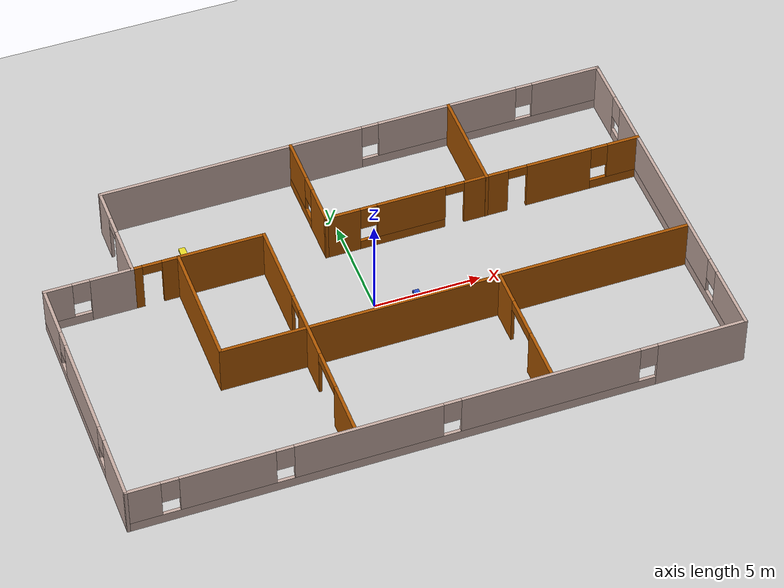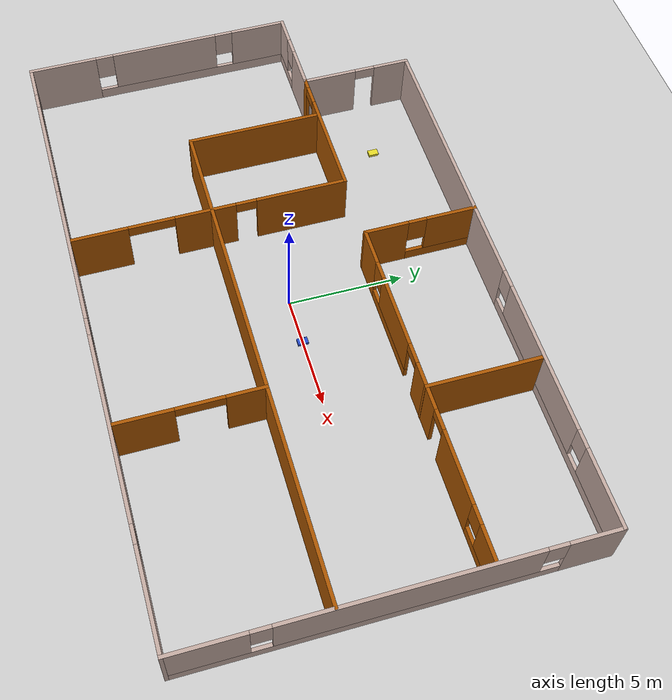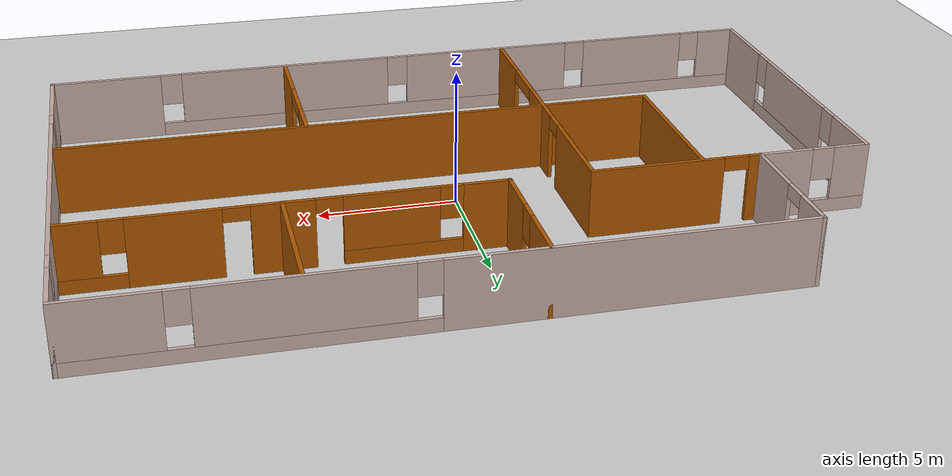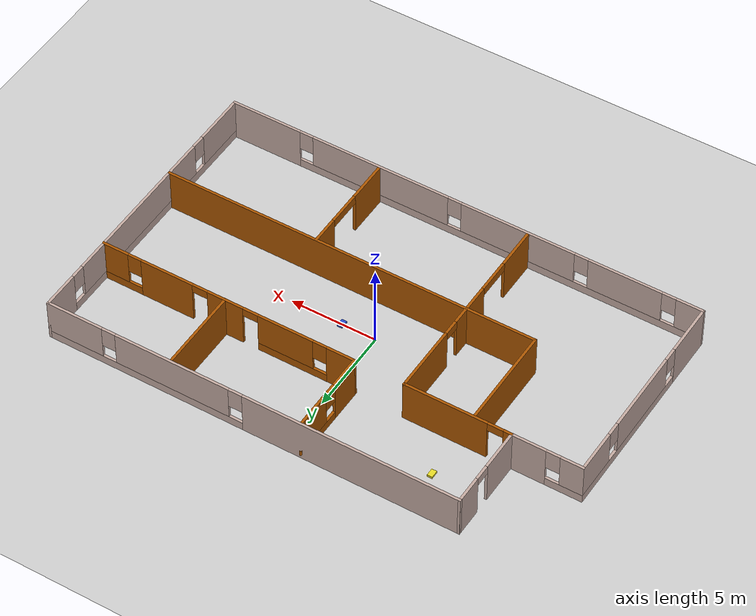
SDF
<sdf version="1.6">
 <world name="default">
  <model name="ground_plane">
   <static>1</static>
   <link name="link">
    <collision name="collision">
     <geometry><plane><normal>0 0 1</normal><size>100 100</size></plane></geometry>
     <surface>
      <contact><collide_bitmask>65535</collide_bitmask></contact>
      <friction><ode><mu>100</mu><mu2>50</mu2></ode></friction>
     </surface>
    </collision>
    <visual name="visual">
     <cast_shadows>0</cast_shadows>
     <geometry><plane><normal>0 0 1</normal><size>100 100</size></plane></geometry>
     <material>
      <script><uri>file://media/materials/scripts/gazebo.material</uri><name>Gazebo/Grey</name></script>
     </material>
    </visual>
   </link>
  </model>
  <model name="Building">
   <link name="Wall_11">
    <pose>-1 6 0 0 -0 1.5708</pose>
    <visual name="Wall_11_Visual_0">
     <pose>-1.51661 0 1.25 0 -0 0</pose>
     <geometry><box><size>1.96679 0.15 2.5</size></box></geometry>
     <material>
      <script><uri>file://media/materials/scripts/gazebo.material</uri><name>Gazebo/Grey</name></script>
      <ambient>0.666667 0.333333 0 1</ambient>
     </material>
     <meta><layer>0</layer></meta>
    </visual>
    <collision name="Wall_11_Collision_0">
     <geometry><box><size>1.96679 0.15 2.5</size></box></geometry>
     <pose>-1.51661 0 1.25 0 -0 0</pose>
    </collision>
    <visual name="Wall_11_Visual_1">
     <pose>0.983394 0 0.25 0 -0 0</pose>
     <geometry><box><size>3.03321 0.15 0.5</size></box></geometry>
     <material>
      <script><uri>file://media/materials/scripts/gazebo.material</uri><name>Gazebo/Grey</name></script>
      <ambient>0.666667 0.333333 0 1</ambient>
     </material>
     <meta><layer>0</layer></meta>
    </visual>
    <collision name="Wall_11_Collision_1">
     <geometry><box><size>3.03321 0.15 0.5</size></box></geometry>
     <pose>0.983394 0 0.25 0 -0 0</pose>
    </collision>
    <visual name="Wall_11_Visual_2">
     <pose>1.38339 0 1.5 0 -0 0</pose>
     <geometry><box><size>2.23321 0.15 2</size></box></geometry>
     <material>
      <script><uri>file://media/materials/scripts/gazebo.material</uri><name>Gazebo/Grey</name></script>
      <ambient>0.666667 0.333333 0 1</ambient>
     </material>
     <meta><layer>0</layer></meta>
    </visual>
    <collision name="Wall_11_Collision_2">
     <geometry><box><size>2.23321 0.15 2</size></box></geometry>
     <pose>1.38339 0 1.5 0 -0 0</pose>
    </collision>
    <visual name="Wall_11_Visual_3">
     <pose>-0.133212 0 1.9 0 -0 0</pose>
     <geometry><box><size>0.8 0.15 1.2</size></box></geometry>
     <material>
      <script><uri>file://media/materials/scripts/gazebo.material</uri><name>Gazebo/Grey</name></script>
      <ambient>0.666667 0.333333 0 1</ambient>
     </material>
     <meta><layer>0</layer></meta>
    </visual>
    <collision name="Wall_11_Collision_3">
     <geometry><box><size>0.8 0.15 1.2</size></box></geometry>
     <pose>-0.133212 0 1.9 0 -0 0</pose>
    </collision>
   </link>
   <link name="Wall_13">
    <pose>-12 3.575 0 0 -0 3.14159</pose>
    <visual name="Wall_13_Visual_0">
     <pose>-1.0623 0 1.25 0 -0 0</pose>
     <geometry><box><size>2.02541 0.15 2.5</size></box></geometry>
     <material>
      <script><uri>file://media/materials/scripts/gazebo.material</uri><name>Gazebo/Grey</name></script>
      <ambient>0.760784 0.662745 0.627451 1</ambient>
     </material>
     <meta><layer>0</layer></meta>
    </visual>
    <collision name="Wall_13_Collision_0">
     <geometry><box><size>2.02541 0.15 2.5</size></box></geometry>
     <pose>-1.0623 0 1.25 0 -0 0</pose>
    </collision>
    <visual name="Wall_13_Visual_1">
     <pose>1.0127 0 0.25 0 -0 0</pose>
     <geometry><box><size>2.12459 0.15 0.5</size></box></geometry>
     <material>
      <script><uri>file://media/materials/scripts/gazebo.material</uri><name>Gazebo/Grey</name></script>
      <ambient>0.760784 0.662745 0.627451 1</ambient>
     </material>
     <meta><layer>0</layer></meta>
    </visual>
    <collision name="Wall_13_Collision_1">
     <geometry><box><size>2.12459 0.15 0.5</size></box></geometry>
     <pose>1.0127 0 0.25 0 -0 0</pose>
    </collision>
    <visual name="Wall_13_Visual_2">
     <pose>1.4127 0 1.5 0 -0 0</pose>
     <geometry><box><size>1.32459 0.15 2</size></box></geometry>
     <material>
      <script><uri>file://media/materials/scripts/gazebo.material</uri><name>Gazebo/Grey</name></script>
      <ambient>0.760784 0.662745 0.627451 1</ambient>
     </material>
     <meta><layer>0</layer></meta>
    </visual>
    <collision name="Wall_13_Collision_2">
     <geometry><box><size>1.32459 0.15 2</size></box></geometry>
     <pose>1.4127 0 1.5 0 -0 0</pose>
    </collision>
    <visual name="Wall_13_Visual_3">
     <pose>0.350407 0 1.9 0 -0 0</pose>
     <geometry><box><size>0.8 0.15 1.2</size></box></geometry>
     <material>
      <script><uri>file://media/materials/scripts/gazebo.material</uri><name>Gazebo/Grey</name></script>
      <ambient>0.760784 0.662745 0.627451 1</ambient>
     </material>
     <meta><layer>0</layer></meta>
    </visual>
    <collision name="Wall_13_Collision_3">
     <geometry><box><size>0.8 0.15 1.2</size></box></geometry>
     <pose>0.350407 0 1.9 0 -0 0</pose>
    </collision>
   </link>
   <link name="Wall_15">
    <pose>-10 6 0 0 -0 1.5708</pose>
    <visual name="Wall_15_Visual_0">
     <pose>-1.27093 0 1.25 0 -0 0</pose>
     <geometry><box><size>2.45814 0.15 2.5</size></box></geometry>
     <material>
      <script><uri>file://media/materials/scripts/gazebo.material</uri><name>Gazebo/Grey</name></script>
      <ambient>0.760784 0.662745 0.627451 1</ambient>
     </material>
     <meta><layer>0</layer></meta>
    </visual>
    <collision name="Wall_15_Collision_0">
     <geometry><box><size>2.45814 0.15 2.5</size></box></geometry>
     <pose>-1.27093 0 1.25 0 -0 0</pose>
    </collision>
    <visual name="Wall_15_Visual_1">
     <pose>1.67907 0 1.25 0 -0 0</pose>
     <geometry><box><size>1.64186 0.15 2.5</size></box></geometry>
     <material>
      <script><uri>file://media/materials/scripts/gazebo.material</uri><name>Gazebo/Grey</name></script>
      <ambient>0.760784 0.662745 0.627451 1</ambient>
     </material>
     <meta><layer>0</layer></meta>
    </visual>
    <collision name="Wall_15_Collision_1">
     <geometry><box><size>1.64186 0.15 2.5</size></box></geometry>
     <pose>1.67907 0 1.25 0 -0 0</pose>
    </collision>
    <visual name="Wall_15_Visual_2">
     <pose>0.408138 0 2.25 0 -0 0</pose>
     <geometry><box><size>0.9 0.15 0.5</size></box></geometry>
     <material>
      <script><uri>file://media/materials/scripts/gazebo.material</uri><name>Gazebo/Grey</name></script>
      <ambient>0.760784 0.662745 0.627451 1</ambient>
     </material>
     <meta><layer>0</layer></meta>
    </visual>
    <collision name="Wall_15_Collision_2">
     <geometry><box><size>0.9 0.15 0.5</size></box></geometry>
     <pose>0.408138 0 2.25 0 -0 0</pose>
    </collision>
   </link>
   <link name="Wall_16">
    <pose>2 8.425 0 0 -0 0</pose>
    <visual name="Wall_16_Visual_0">
     <pose>-5.83381 0 1.25 0 -0 0</pose>
     <geometry><box><size>12.4824 0.15 2.5</size></box></geometry>
     <material>
      <script><uri>file://media/materials/scripts/gazebo.material</uri><name>Gazebo/Grey</name></script>
      <ambient>0.760784 0.662745 0.627451 1</ambient>
     </material>
     <meta><layer>0</layer></meta>
    </visual>
    <collision name="Wall_16_Collision_0">
     <geometry><box><size>12.4824 0.15 2.5</size></box></geometry>
     <pose>-5.83381 0 1.25 0 -0 0</pose>
    </collision>
    <visual name="Wall_16_Visual_1">
     <pose>6.24119 0 0.25 0 -0 0</pose>
     <geometry><box><size>11.6676 0.15 0.5</size></box></geometry>
     <material>
      <script><uri>file://media/materials/scripts/gazebo.material</uri><name>Gazebo/Grey</name></script>
      <ambient>0.760784 0.662745 0.627451 1</ambient>
     </material>
     <meta><layer>0</layer></meta>
    </visual>
    <collision name="Wall_16_Collision_1">
     <geometry><box><size>11.6676 0.15 0.5</size></box></geometry>
     <pose>6.24119 0 0.25 0 -0 0</pose>
    </collision>
    <visual name="Wall_16_Visual_2">
     <pose>4.57426 0 1.5 0 -0 0</pose>
     <geometry><box><size>6.73378 0.15 2</size></box></geometry>
     <material>
      <script><uri>file://media/materials/scripts/gazebo.material</uri><name>Gazebo/Grey</name></script>
      <ambient>0.760784 0.662745 0.627451 1</ambient>
     </material>
     <meta><layer>0</layer></meta>
    </visual>
    <collision name="Wall_16_Collision_2">
     <geometry><box><size>6.73378 0.15 2</size></box></geometry>
     <pose>4.57426 0 1.5 0 -0 0</pose>
    </collision>
    <visual name="Wall_16_Visual_3">
     <pose>10.4081 0 1.5 0 -0 0</pose>
     <geometry><box><size>3.33385 0.15 2</size></box></geometry>
     <material>
      <script><uri>file://media/materials/scripts/gazebo.material</uri><name>Gazebo/Grey</name></script>
      <ambient>0.760784 0.662745 0.627451 1</ambient>
     </material>
     <meta><layer>0</layer></meta>
    </visual>
    <collision name="Wall_16_Collision_3">
     <geometry><box><size>3.33385 0.15 2</size></box></geometry>
     <pose>10.4081 0 1.5 0 -0 0</pose>
    </collision>
    <visual name="Wall_16_Visual_4">
     <pose>0.807374 0 1.9 0 -0 0</pose>
     <geometry><box><size>0.8 0.15 1.2</size></box></geometry>
     <material>
      <script><uri>file://media/materials/scripts/gazebo.material</uri><name>Gazebo/Grey</name></script>
      <ambient>0.760784 0.662745 0.627451 1</ambient>
     </material>
     <meta><layer>0</layer></meta>
    </visual>
    <collision name="Wall_16_Collision_4">
     <geometry><box><size>0.8 0.15 1.2</size></box></geometry>
     <pose>0.807374 0 1.9 0 -0 0</pose>
    </collision>
    <visual name="Wall_16_Visual_5">
     <pose>8.34115 0 1.9 0 -0 0</pose>
     <geometry><box><size>0.8 0.15 1.2</size></box></geometry>
     <material>
      <script><uri>file://media/materials/scripts/gazebo.material</uri><name>Gazebo/Grey</name></script>
      <ambient>0.760784 0.662745 0.627451 1</ambient>
     </material>
     <meta><layer>0</layer></meta>
    </visual>
    <collision name="Wall_16_Collision_5">
     <geometry><box><size>0.8 0.15 1.2</size></box></geometry>
     <pose>8.34115 0 1.9 0 -0 0</pose>
    </collision>
   </link>
   <link name="Wall_17">
    <pose>14 0 0 0 0 -1.5708</pose>
    <visual name="Wall_17_Visual_0">
     <pose>-7.40595 0 1.25 0 -0 0</pose>
     <geometry><box><size>2.1881 0.15 2.5</size></box></geometry>
     <material>
      <script><uri>file://media/materials/scripts/gazebo.material</uri><name>Gazebo/Grey</name></script>
      <ambient>0.760784 0.662745 0.627451 1</ambient>
     </material>
     <meta><layer>0</layer></meta>
    </visual>
    <collision name="Wall_17_Collision_0">
     <geometry><box><size>2.1881 0.15 2.5</size></box></geometry>
     <pose>-7.40595 0 1.25 0 -0 0</pose>
    </collision>
    <visual name="Wall_17_Visual_1">
     <pose>1.09405 0 0.25 0 -0 0</pose>
     <geometry><box><size>14.8119 0.15 0.5</size></box></geometry>
     <material>
      <script><uri>file://media/materials/scripts/gazebo.material</uri><name>Gazebo/Grey</name></script>
      <ambient>0.760784 0.662745 0.627451 1</ambient>
     </material>
     <meta><layer>0</layer></meta>
    </visual>
    <collision name="Wall_17_Collision_1">
     <geometry><box><size>14.8119 0.15 0.5</size></box></geometry>
     <pose>1.09405 0 0.25 0 -0 0</pose>
    </collision>
    <visual name="Wall_17_Visual_2">
     <pose>-0.475851 0 1.5 0 -0 0</pose>
     <geometry><box><size>10.0721 0.15 2</size></box></geometry>
     <material>
      <script><uri>file://media/materials/scripts/gazebo.material</uri><name>Gazebo/Grey</name></script>
      <ambient>0.760784 0.662745 0.627451 1</ambient>
     </material>
     <meta><layer>0</layer></meta>
    </visual>
    <collision name="Wall_17_Collision_2">
     <geometry><box><size>10.0721 0.15 2</size></box></geometry>
     <pose>-0.475851 0 1.5 0 -0 0</pose>
    </collision>
    <visual name="Wall_17_Visual_3">
     <pose>6.9301 0 1.5 0 -0 0</pose>
     <geometry><box><size>3.1398 0.15 2</size></box></geometry>
     <material>
      <script><uri>file://media/materials/scripts/gazebo.material</uri><name>Gazebo/Grey</name></script>
      <ambient>0.760784 0.662745 0.627451 1</ambient>
     </material>
     <meta><layer>0</layer></meta>
    </visual>
    <collision name="Wall_17_Collision_3">
     <geometry><box><size>3.1398 0.15 2</size></box></geometry>
     <pose>6.9301 0 1.5 0 -0 0</pose>
    </collision>
    <visual name="Wall_17_Visual_4">
     <pose>-5.9119 0 1.9 0 -0 0</pose>
     <geometry><box><size>0.8 0.15 1.2</size></box></geometry>
     <material>
      <script><uri>file://media/materials/scripts/gazebo.material</uri><name>Gazebo/Grey</name></script>
      <ambient>0.760784 0.662745 0.627451 1</ambient>
     </material>
     <meta><layer>0</layer></meta>
    </visual>
    <collision name="Wall_17_Collision_4">
     <geometry><box><size>0.8 0.15 1.2</size></box></geometry>
     <pose>-5.9119 0 1.9 0 -0 0</pose>
    </collision>
    <visual name="Wall_17_Visual_5">
     <pose>4.9602 0 1.9 0 -0 0</pose>
     <geometry><box><size>0.8 0.15 1.2</size></box></geometry>
     <material>
      <script><uri>file://media/materials/scripts/gazebo.material</uri><name>Gazebo/Grey</name></script>
      <ambient>0.760784 0.662745 0.627451 1</ambient>
     </material>
     <meta><layer>0</layer></meta>
    </visual>
    <collision name="Wall_17_Collision_5">
     <geometry><box><size>0.8 0.15 1.2</size></box></geometry>
     <pose>4.9602 0 1.9 0 -0 0</pose>
    </collision>
   </link>
   <link name="Wall_18">
    <pose>0 -8.425 0 0 -0 3.14159</pose>
    <visual name="Wall_18_Visual_0">
     <pose>-11.979 0 1.25 0 -0 0</pose>
     <geometry><box><size>4.19207 0.15 2.5</size></box></geometry>
     <material>
      <script><uri>file://media/materials/scripts/gazebo.material</uri><name>Gazebo/Grey</name></script>
      <ambient>0.760784 0.662745 0.627451 1</ambient>
     </material>
     <meta><layer>0</layer></meta>
    </visual>
    <collision name="Wall_18_Collision_0">
     <geometry><box><size>4.19207 0.15 2.5</size></box></geometry>
     <pose>-11.979 0 1.25 0 -0 0</pose>
    </collision>
    <visual name="Wall_18_Visual_1">
     <pose>2.09604 0 0.25 0 -0 0</pose>
     <geometry><box><size>23.9579 0.15 0.5</size></box></geometry>
     <material>
      <script><uri>file://media/materials/scripts/gazebo.material</uri><name>Gazebo/Grey</name></script>
      <ambient>0.760784 0.662745 0.627451 1</ambient>
     </material>
     <meta><layer>0</layer></meta>
    </visual>
    <collision name="Wall_18_Collision_1">
     <geometry><box><size>23.9579 0.15 0.5</size></box></geometry>
     <pose>2.09604 0 0.25 0 -0 0</pose>
    </collision>
    <visual name="Wall_18_Visual_2">
     <pose>-4.97168 0 1.5 0 -0 0</pose>
     <geometry><box><size>8.22249 0.15 2</size></box></geometry>
     <material>
      <script><uri>file://media/materials/scripts/gazebo.material</uri><name>Gazebo/Grey</name></script>
      <ambient>0.760784 0.662745 0.627451 1</ambient>
     </material>
     <meta><layer>0</layer></meta>
    </visual>
    <collision name="Wall_18_Collision_2">
     <geometry><box><size>8.22249 0.15 2</size></box></geometry>
     <pose>-4.97168 0 1.5 0 -0 0</pose>
    </collision>
    <visual name="Wall_18_Visual_3">
     <pose>3.2839 0 1.5 0 -0 0</pose>
     <geometry><box><size>6.68867 0.15 2</size></box></geometry>
     <material>
      <script><uri>file://media/materials/scripts/gazebo.material</uri><name>Gazebo/Grey</name></script>
      <ambient>0.760784 0.662745 0.627451 1</ambient>
     </material>
     <meta><layer>0</layer></meta>
    </visual>
    <collision name="Wall_18_Collision_3">
     <geometry><box><size>6.68867 0.15 2</size></box></geometry>
     <pose>3.2839 0 1.5 0 -0 0</pose>
    </collision>
    <visual name="Wall_18_Visual_4">
     <pose>9.55452 0 1.5 0 -0 0</pose>
     <geometry><box><size>4.25259 0.15 2</size></box></geometry>
     <material>
      <script><uri>file://media/materials/scripts/gazebo.material</uri><name>Gazebo/Grey</name></script>
      <ambient>0.760784 0.662745 0.627451 1</ambient>
     </material>
     <meta><layer>0</layer></meta>
    </visual>
    <collision name="Wall_18_Collision_4">
     <geometry><box><size>4.25259 0.15 2</size></box></geometry>
     <pose>9.55452 0 1.5 0 -0 0</pose>
    </collision>
    <visual name="Wall_18_Visual_5">
     <pose>13.2779 0 1.5 0 -0 0</pose>
     <geometry><box><size>1.59418 0.15 2</size></box></geometry>
     <material>
      <script><uri>file://media/materials/scripts/gazebo.material</uri><name>Gazebo/Grey</name></script>
      <ambient>0.760784 0.662745 0.627451 1</ambient>
     </material>
     <meta><layer>0</layer></meta>
    </visual>
    <collision name="Wall_18_Collision_5">
     <geometry><box><size>1.59418 0.15 2</size></box></geometry>
     <pose>13.2779 0 1.5 0 -0 0</pose>
    </collision>
    <visual name="Wall_18_Visual_6">
     <pose>-9.48293 0 1.9 0 -0 0</pose>
     <geometry><box><size>0.8 0.15 1.2</size></box></geometry>
     <material>
      <script><uri>file://media/materials/scripts/gazebo.material</uri><name>Gazebo/Grey</name></script>
      <ambient>0.760784 0.662745 0.627451 1</ambient>
     </material>
     <meta><layer>0</layer></meta>
    </visual>
    <collision name="Wall_18_Collision_6">
     <geometry><box><size>0.8 0.15 1.2</size></box></geometry>
     <pose>-9.48293 0 1.9 0 -0 0</pose>
    </collision>
    <visual name="Wall_18_Visual_7">
     <pose>-0.460437 0 1.9 0 -0 0</pose>
     <geometry><box><size>0.8 0.15 1.2</size></box></geometry>
     <material>
      <script><uri>file://media/materials/scripts/gazebo.material</uri><name>Gazebo/Grey</name></script>
      <ambient>0.760784 0.662745 0.627451 1</ambient>
     </material>
     <meta><layer>0</layer></meta>
    </visual>
    <collision name="Wall_18_Collision_7">
     <geometry><box><size>0.8 0.15 1.2</size></box></geometry>
     <pose>-0.460437 0 1.9 0 -0 0</pose>
    </collision>
    <visual name="Wall_18_Visual_8">
     <pose>7.02823 0 1.9 0 -0 0</pose>
     <geometry><box><size>0.8 0.15 1.2</size></box></geometry>
     <material>
      <script><uri>file://media/materials/scripts/gazebo.material</uri><name>Gazebo/Grey</name></script>
      <ambient>0.760784 0.662745 0.627451 1</ambient>
     </material>
     <meta><layer>0</layer></meta>
    </visual>
    <collision name="Wall_18_Collision_8">
     <geometry><box><size>0.8 0.15 1.2</size></box></geometry>
     <pose>7.02823 0 1.9 0 -0 0</pose>
    </collision>
    <visual name="Wall_18_Visual_9">
     <pose>12.0808 0 1.9 0 -0 0</pose>
     <geometry><box><size>0.8 0.15 1.2</size></box></geometry>
     <material>
      <script><uri>file://media/materials/scripts/gazebo.material</uri><name>Gazebo/Grey</name></script>
      <ambient>0.760784 0.662745 0.627451 1</ambient>
     </material>
     <meta><layer>0</layer></meta>
    </visual>
    <collision name="Wall_18_Collision_9">
     <geometry><box><size>0.8 0.15 1.2</size></box></geometry>
     <pose>12.0808 0 1.9 0 -0 0</pose>
    </collision>
   </link>
   <link name="Wall_19">
    <pose>-14 -2.425 0 0 -0 1.5708</pose>
    <visual name="Wall_19_Visual_0">
     <pose>-4.52766 0 1.25 0 -0 0</pose>
     <geometry><box><size>3.09469 0.15 2.5</size></box></geometry>
     <material>
      <script><uri>file://media/materials/scripts/gazebo.material</uri><name>Gazebo/Grey</name></script>
      <ambient>0.760784 0.662745 0.627451 1</ambient>
     </material>
     <meta><layer>0</layer></meta>
    </visual>
    <collision name="Wall_19_Collision_0">
     <geometry><box><size>3.09469 0.15 2.5</size></box></geometry>
     <pose>-4.52766 0 1.25 0 -0 0</pose>
    </collision>
    <visual name="Wall_19_Visual_1">
     <pose>1.54734 0 0.25 0 -0 0</pose>
     <geometry><box><size>9.05531 0.15 0.5</size></box></geometry>
     <material>
      <script><uri>file://media/materials/scripts/gazebo.material</uri><name>Gazebo/Grey</name></script>
      <ambient>0.760784 0.662745 0.627451 1</ambient>
     </material>
     <meta><layer>0</layer></meta>
    </visual>
    <collision name="Wall_19_Collision_1">
     <geometry><box><size>9.05531 0.15 0.5</size></box></geometry>
     <pose>1.54734 0 0.25 0 -0 0</pose>
    </collision>
    <visual name="Wall_19_Visual_2">
     <pose>0.261773 0 1.5 0 -0 0</pose>
     <geometry><box><size>4.88417 0.15 2</size></box></geometry>
     <material>
      <script><uri>file://media/materials/scripts/gazebo.material</uri><name>Gazebo/Grey</name></script>
      <ambient>0.760784 0.662745 0.627451 1</ambient>
     </material>
     <meta><layer>0</layer></meta>
    </visual>
    <collision name="Wall_19_Collision_2">
     <geometry><box><size>4.88417 0.15 2</size></box></geometry>
     <pose>0.261773 0 1.5 0 -0 0</pose>
    </collision>
    <visual name="Wall_19_Visual_3">
     <pose>4.78943 0 1.5 0 -0 0</pose>
     <geometry><box><size>2.57114 0.15 2</size></box></geometry>
     <material>
      <script><uri>file://media/materials/scripts/gazebo.material</uri><name>Gazebo/Grey</name></script>
      <ambient>0.760784 0.662745 0.627451 1</ambient>
     </material>
     <meta><layer>0</layer></meta>
    </visual>
    <collision name="Wall_19_Collision_3">
     <geometry><box><size>2.57114 0.15 2</size></box></geometry>
     <pose>4.78943 0 1.5 0 -0 0</pose>
    </collision>
    <visual name="Wall_19_Visual_4">
     <pose>-2.58031 0 1.9 0 -0 0</pose>
     <geometry><box><size>0.8 0.15 1.2</size></box></geometry>
     <material>
      <script><uri>file://media/materials/scripts/gazebo.material</uri><name>Gazebo/Grey</name></script>
      <ambient>0.760784 0.662745 0.627451 1</ambient>
     </material>
     <meta><layer>0</layer></meta>
    </visual>
    <collision name="Wall_19_Collision_4">
     <geometry><box><size>0.8 0.15 1.2</size></box></geometry>
     <pose>-2.58031 0 1.9 0 -0 0</pose>
    </collision>
    <visual name="Wall_19_Visual_5">
     <pose>3.10386 0 1.9 0 -0 0</pose>
     <geometry><box><size>0.8 0.15 1.2</size></box></geometry>
     <material>
      <script><uri>file://media/materials/scripts/gazebo.material</uri><name>Gazebo/Grey</name></script>
      <ambient>0.760784 0.662745 0.627451 1</ambient>
     </material>
     <meta><layer>0</layer></meta>
    </visual>
    <collision name="Wall_19_Collision_5">
     <geometry><box><size>0.8 0.15 1.2</size></box></geometry>
     <pose>3.10386 0 1.9 0 -0 0</pose>
    </collision>
   </link>
   <link name="Wall_23">
    <pose>-6.95 3.575 0 0 -0 0</pose>
    <visual name="Wall_23_Visual_0">
     <pose>-2.86366 0 1.25 0 -0 0</pose>
     <geometry><box><size>0.522689 0.15 2.5</size></box></geometry>
     <material>
      <script><uri>file://media/materials/scripts/gazebo.material</uri><name>Gazebo/Grey</name></script>
      <ambient>0.666667 0.333333 0 1</ambient>
     </material>
     <meta><layer>0</layer></meta>
    </visual>
    <collision name="Wall_23_Collision_0">
     <geometry><box><size>0.522689 0.15 2.5</size></box></geometry>
     <pose>-2.86366 0 1.25 0 -0 0</pose>
    </collision>
    <visual name="Wall_23_Visual_1">
     <pose>0.711344 0 1.25 0 -0 0</pose>
     <geometry><box><size>4.82731 0.15 2.5</size></box></geometry>
     <material>
      <script><uri>file://media/materials/scripts/gazebo.material</uri><name>Gazebo/Grey</name></script>
      <ambient>0.666667 0.333333 0 1</ambient>
     </material>
     <meta><layer>0</layer></meta>
    </visual>
    <collision name="Wall_23_Collision_1">
     <geometry><box><size>4.82731 0.15 2.5</size></box></geometry>
     <pose>0.711344 0 1.25 0 -0 0</pose>
    </collision>
    <visual name="Wall_23_Visual_2">
     <pose>-2.15231 0 2.25 0 -0 0</pose>
     <geometry><box><size>0.9 0.15 0.5</size></box></geometry>
     <material>
      <script><uri>file://media/materials/scripts/gazebo.material</uri><name>Gazebo/Grey</name></script>
      <ambient>0.666667 0.333333 0 1</ambient>
     </material>
     <meta><layer>0</layer></meta>
    </visual>
    <collision name="Wall_23_Collision_2">
     <geometry><box><size>0.9 0.15 0.5</size></box></geometry>
     <pose>-2.15231 0 2.25 0 -0 0</pose>
    </collision>
   </link>
   <link name="Wall_24">
    <pose>-3.9 -2.35 0 0 0 -1.5708</pose>
    <visual name="Wall_24_Visual_0">
     <pose>-3.99507 0 1.25 0 -0 0</pose>
     <geometry><box><size>4.00985 0.15 2.5</size></box></geometry>
     <material>
      <script><uri>file://media/materials/scripts/gazebo.material</uri><name>Gazebo/Grey</name></script>
      <ambient>0.666667 0.333333 0 1</ambient>
     </material>
     <meta><layer>0</layer></meta>
    </visual>
    <collision name="Wall_24_Collision_0">
     <geometry><box><size>4.00985 0.15 2.5</size></box></geometry>
     <pose>-3.99507 0 1.25 0 -0 0</pose>
    </collision>
    <visual name="Wall_24_Visual_1">
     <pose>0.23747 0 1.25 0 -0 0</pose>
     <geometry><box><size>2.65523 0.15 2.5</size></box></geometry>
     <material>
      <script><uri>file://media/materials/scripts/gazebo.material</uri><name>Gazebo/Grey</name></script>
      <ambient>0.666667 0.333333 0 1</ambient>
     </material>
     <meta><layer>0</layer></meta>
    </visual>
    <collision name="Wall_24_Collision_1">
     <geometry><box><size>2.65523 0.15 2.5</size></box></geometry>
     <pose>0.23747 0 1.25 0 -0 0</pose>
    </collision>
    <visual name="Wall_24_Visual_2">
     <pose>4.78254 0 1.25 0 -0 0</pose>
     <geometry><box><size>2.43491 0.15 2.5</size></box></geometry>
     <material>
      <script><uri>file://media/materials/scripts/gazebo.material</uri><name>Gazebo/Grey</name></script>
      <ambient>0.666667 0.333333 0 1</ambient>
     </material>
     <meta><layer>0</layer></meta>
    </visual>
    <collision name="Wall_24_Collision_2">
     <geometry><box><size>2.43491 0.15 2.5</size></box></geometry>
     <pose>4.78254 0 1.25 0 -0 0</pose>
    </collision>
    <visual name="Wall_24_Visual_3">
     <pose>-1.54015 0 2.25 0 -0 0</pose>
     <geometry><box><size>0.9 0.15 0.5</size></box></geometry>
     <material>
      <script><uri>file://media/materials/scripts/gazebo.material</uri><name>Gazebo/Grey</name></script>
      <ambient>0.666667 0.333333 0 1</ambient>
     </material>
     <meta><layer>0</layer></meta>
    </visual>
    <collision name="Wall_24_Collision_3">
     <geometry><box><size>0.9 0.15 0.5</size></box></geometry>
     <pose>-1.54015 0 2.25 0 -0 0</pose>
    </collision>
    <visual name="Wall_24_Visual_4">
     <pose>2.56509 0 2.25 0 -0 0</pose>
     <geometry><box><size>2 0.15 0.5</size></box></geometry>
     <material>
      <script><uri>file://media/materials/scripts/gazebo.material</uri><name>Gazebo/Grey</name></script>
      <ambient>0.666667 0.333333 0 1</ambient>
     </material>
     <meta><layer>0</layer></meta>
    </visual>
    <collision name="Wall_24_Collision_4">
     <geometry><box><size>2 0.15 0.5</size></box></geometry>
     <pose>2.56509 0 2.25 0 -0 0</pose>
    </collision>
   </link>
   <link name="Wall_26">
    <collision name="Wall_26_Collision">
     <geometry><box><size>6 0.15 2.5</size></box></geometry>
     <pose>0 0 1.25 0 -0 0</pose>
    </collision>
    <visual name="Wall_26_Visual">
     <pose>0 0 1.25 0 -0 0</pose>
     <geometry><box><size>6 0.15 2.5</size></box></geometry>
     <material>
      <script><uri>file://media/materials/scripts/gazebo.material</uri><name>Gazebo/Grey</name></script>
      <ambient>0.666667 0.333333 0 1</ambient>
     </material>
     <meta><layer>0</layer></meta>
    </visual>
    <pose>-7.87279 0.619488 0 0 0 -1.5708</pose>
   </link>
   <link name="Wall_27">
    <collision name="Wall_27_Collision">
     <geometry><box><size>22 0.15 2.5</size></box></geometry>
     <pose>0 0 1.25 0 -0 0</pose>
    </collision>
    <visual name="Wall_27_Visual">
     <pose>0 0 1.25 0 -0 0</pose>
     <geometry><box><size>22 0.15 2.5</size></box></geometry>
     <material>
      <script><uri>file://media/materials/scripts/gazebo.material</uri><name>Gazebo/Grey</name></script>
      <ambient>0.666667 0.333333 0 1</ambient>
     </material>
     <meta><layer>0</layer></meta>
    </visual>
    <pose>3.05221 -2.30551 0 0 -0 0</pose>
   </link>
   <link name="Wall_29">
    <pose>5 -5.2905 0 0 0 -1.5708</pose>
    <visual name="Wall_29_Visual_0">
     <pose>-2.2125 0 1.25 0 -0 0</pose>
     <geometry><box><size>1.694 0.15 2.5</size></box></geometry>
     <material>
      <script><uri>file://media/materials/scripts/gazebo.material</uri><name>Gazebo/Grey</name></script>
      <ambient>0.666667 0.333333 0 1</ambient>
     </material>
     <meta><layer>0</layer></meta>
    </visual>
    <collision name="Wall_29_Collision_0">
     <geometry><box><size>1.694 0.15 2.5</size></box></geometry>
     <pose>-2.2125 0 1.25 0 -0 0</pose>
    </collision>
    <visual name="Wall_29_Visual_1">
     <pose>1.847 0 1.25 0 -0 0</pose>
     <geometry><box><size>2.425 0.15 2.5</size></box></geometry>
     <material>
      <script><uri>file://media/materials/scripts/gazebo.material</uri><name>Gazebo/Grey</name></script>
      <ambient>0.666667 0.333333 0 1</ambient>
     </material>
     <meta><layer>0</layer></meta>
    </visual>
    <collision name="Wall_29_Collision_1">
     <geometry><box><size>2.425 0.15 2.5</size></box></geometry>
     <pose>1.847 0 1.25 0 -0 0</pose>
    </collision>
    <visual name="Wall_29_Visual_2">
     <pose>-0.3655 0 2.25 0 -0 0</pose>
     <geometry><box><size>2 0.15 0.5</size></box></geometry>
     <material>
      <script><uri>file://media/materials/scripts/gazebo.material</uri><name>Gazebo/Grey</name></script>
      <ambient>0.666667 0.333333 0 1</ambient>
     </material>
     <meta><layer>0</layer></meta>
    </visual>
    <collision name="Wall_29_Collision_2">
     <geometry><box><size>2 0.15 0.5</size></box></geometry>
     <pose>-0.3655 0 2.25 0 -0 0</pose>
    </collision>
   </link>
   <link name="Wall_32">
    <collision name="Wall_32_Collision">
     <geometry><box><size>5 0.15 2.5</size></box></geometry>
     <pose>0 0 1.25 0 -0 0</pose>
    </collision>
    <visual name="Wall_32_Visual">
     <pose>0 0 1.25 0 -0 0</pose>
     <geometry><box><size>5 0.15 2.5</size></box></geometry>
     <material>
      <script><uri>file://media/materials/scripts/gazebo.material</uri><name>Gazebo/Grey</name></script>
      <ambient>0.666667 0.333333 0 1</ambient>
     </material>
     <meta><layer>0</layer></meta>
    </visual>
    <pose>6.64193 5.99105 0 0 -0 1.5708</pose>
   </link>
   <link name="Wall_5">
    <pose>6.5 3.575 0 0 -0 0</pose>
    <visual name="Wall_5_Visual_0">
     <pose>-6.73606 0 1.25 0 -0 0</pose>
     <geometry><box><size>1.67788 0.15 2.5</size></box></geometry>
     <material>
      <script><uri>file://media/materials/scripts/gazebo.material</uri><name>Gazebo/Grey</name></script>
      <ambient>0.666667 0.333333 0 1</ambient>
     </material>
     <meta><layer>0</layer></meta>
    </visual>
    <collision name="Wall_5_Collision_0">
     <geometry><box><size>1.67788 0.15 2.5</size></box></geometry>
     <pose>-6.73606 0 1.25 0 -0 0</pose>
    </collision>
    <visual name="Wall_5_Visual_1">
     <pose>0.119376 0 1.25 0 -0 0</pose>
     <geometry><box><size>2.12253 0.15 2.5</size></box></geometry>
     <material>
      <script><uri>file://media/materials/scripts/gazebo.material</uri><name>Gazebo/Grey</name></script>
      <ambient>0.666667 0.333333 0 1</ambient>
     </material>
     <meta><layer>0</layer></meta>
    </visual>
    <collision name="Wall_5_Collision_1">
     <geometry><box><size>2.12253 0.15 2.5</size></box></geometry>
     <pose>0.119376 0 1.25 0 -0 0</pose>
    </collision>
    <visual name="Wall_5_Visual_2">
     <pose>3.64059 0 1.25 0 -0 0</pose>
     <geometry><box><size>3.1199 0.15 2.5</size></box></geometry>
     <material>
      <script><uri>file://media/materials/scripts/gazebo.material</uri><name>Gazebo/Grey</name></script>
      <ambient>0.666667 0.333333 0 1</ambient>
     </material>
     <meta><layer>0</layer></meta>
    </visual>
    <collision name="Wall_5_Collision_2">
     <geometry><box><size>3.1199 0.15 2.5</size></box></geometry>
     <pose>3.64059 0 1.25 0 -0 0</pose>
    </collision>
    <visual name="Wall_5_Visual_3">
     <pose>-3.86951 0 0.25 0 -0 0</pose>
     <geometry><box><size>4.05523 0.15 0.5</size></box></geometry>
     <material>
      <script><uri>file://media/materials/scripts/gazebo.material</uri><name>Gazebo/Grey</name></script>
      <ambient>0.666667 0.333333 0 1</ambient>
     </material>
     <meta><layer>0</layer></meta>
    </visual>
    <collision name="Wall_5_Collision_3">
     <geometry><box><size>4.05523 0.15 0.5</size></box></geometry>
     <pose>-3.86951 0 0.25 0 -0 0</pose>
    </collision>
    <visual name="Wall_5_Visual_4">
     <pose>6.38777 0 0.25 0 -0 0</pose>
     <geometry><box><size>2.37446 0.15 0.5</size></box></geometry>
     <material>
      <script><uri>file://media/materials/scripts/gazebo.material</uri><name>Gazebo/Grey</name></script>
      <ambient>0.666667 0.333333 0 1</ambient>
     </material>
     <meta><layer>0</layer></meta>
    </visual>
    <collision name="Wall_5_Collision_4">
     <geometry><box><size>2.37446 0.15 0.5</size></box></geometry>
     <pose>6.38777 0 0.25 0 -0 0</pose>
    </collision>
    <visual name="Wall_5_Visual_5">
     <pose>-3.46951 0 1.5 0 -0 0</pose>
     <geometry><box><size>3.25523 0.15 2</size></box></geometry>
     <material>
      <script><uri>file://media/materials/scripts/gazebo.material</uri><name>Gazebo/Grey</name></script>
      <ambient>0.666667 0.333333 0 1</ambient>
     </material>
     <meta><layer>0</layer></meta>
    </visual>
    <collision name="Wall_5_Collision_5">
     <geometry><box><size>3.25523 0.15 2</size></box></geometry>
     <pose>-3.46951 0 1.5 0 -0 0</pose>
    </collision>
    <visual name="Wall_5_Visual_6">
     <pose>-3.46951 0 1.5 0 -0 0</pose>
     <geometry><box><size>3.25523 0.15 2</size></box></geometry>
     <material>
      <script><uri>file://media/materials/scripts/gazebo.material</uri><name>Gazebo/Grey</name></script>
      <ambient>0.666667 0.333333 0 1</ambient>
     </material>
     <meta><layer>0</layer></meta>
    </visual>
    <collision name="Wall_5_Collision_6">
     <geometry><box><size>3.25523 0.15 2</size></box></geometry>
     <pose>-3.46951 0 1.5 0 -0 0</pose>
    </collision>
    <visual name="Wall_5_Visual_7">
     <pose>6.78777 0 1.5 0 -0 0</pose>
     <geometry><box><size>1.57446 0.15 2</size></box></geometry>
     <material>
      <script><uri>file://media/materials/scripts/gazebo.material</uri><name>Gazebo/Grey</name></script>
      <ambient>0.666667 0.333333 0 1</ambient>
     </material>
     <meta><layer>0</layer></meta>
    </visual>
    <collision name="Wall_5_Collision_7">
     <geometry><box><size>1.57446 0.15 2</size></box></geometry>
     <pose>6.78777 0 1.5 0 -0 0</pose>
    </collision>
    <visual name="Wall_5_Visual_8">
     <pose>-5.49712 0 1.9 0 -0 0</pose>
     <geometry><box><size>0.8 0.15 1.2</size></box></geometry>
     <material>
      <script><uri>file://media/materials/scripts/gazebo.material</uri><name>Gazebo/Grey</name></script>
      <ambient>0.666667 0.333333 0 1</ambient>
     </material>
     <meta><layer>0</layer></meta>
    </visual>
    <collision name="Wall_5_Collision_8">
     <geometry><box><size>0.8 0.15 1.2</size></box></geometry>
     <pose>-5.49712 0 1.9 0 -0 0</pose>
    </collision>
    <visual name="Wall_5_Visual_9">
     <pose>5.60054 0 1.9 0 -0 0</pose>
     <geometry><box><size>0.8 0.15 1.2</size></box></geometry>
     <material>
      <script><uri>file://media/materials/scripts/gazebo.material</uri><name>Gazebo/Grey</name></script>
      <ambient>0.666667 0.333333 0 1</ambient>
     </material>
     <meta><layer>0</layer></meta>
    </visual>
    <collision name="Wall_5_Collision_9">
     <geometry><box><size>0.8 0.15 1.2</size></box></geometry>
     <pose>5.60054 0 1.9 0 -0 0</pose>
    </collision>
    <visual name="Wall_5_Visual_10">
     <pose>1.63064 0 2.25 0 -0 0</pose>
     <geometry><box><size>0.9 0.15 0.5</size></box></geometry>
     <material>
      <script><uri>file://media/materials/scripts/gazebo.material</uri><name>Gazebo/Grey</name></script>
      <ambient>0.666667 0.333333 0 1</ambient>
     </material>
     <meta><layer>0</layer></meta>
    </visual>
    <collision name="Wall_5_Collision_10">
     <geometry><box><size>0.9 0.15 0.5</size></box></geometry>
     <pose>1.63064 0 2.25 0 -0 0</pose>
    </collision>
    <visual name="Wall_5_Visual_11">
     <pose>-1.39189 0 2.25 0 -0 0</pose>
     <geometry><box><size>0.9 0.15 0.5</size></box></geometry>
     <material>
      <script><uri>file://media/materials/scripts/gazebo.material</uri><name>Gazebo/Grey</name></script>
      <ambient>0.666667 0.333333 0 1</ambient>
     </material>
     <meta><layer>0</layer></meta>
    </visual>
    <collision name="Wall_5_Collision_11">
     <geometry><box><size>0.9 0.15 0.5</size></box></geometry>
     <pose>-1.39189 0 2.25 0 -0 0</pose>
    </collision>
    <visual name="Wall_5_Visual_12">
     <pose>-1.39189 0 2.25 0 -0 0</pose>
     <geometry><box><size>0.9 0.15 0.5</size></box></geometry>
     <material>
      <script><uri>file://media/materials/scripts/gazebo.material</uri><name>Gazebo/Grey</name></script>
      <ambient>0.666667 0.333333 0 1</ambient>
     </material>
     <meta><layer>0</layer></meta>
    </visual>
    <collision name="Wall_5_Collision_12">
     <geometry><box><size>0.9 0.15 0.5</size></box></geometry>
     <pose>-1.39189 0 2.25 0 -0 0</pose>
    </collision>
   </link>
   <static>1</static>
  </model>
  <model name="unit_box_2">
   <pose>1.885 0.12 0.1325 0 0 0</pose>
   <link name="link">
    <inertial>
     <mass>0.05</mass>
     <inertia>
      <ixx>0.016667</ixx>
      <ixy>0</ixy>
      <ixz>0</ixz>
      <iyy>0.016667</iyy>
      <iyz>0</iyz>
      <izz>0.016667</izz>
     </inertia>
    </inertial>
    <collision name="collision">
     <geometry><box><size>0.015 0.025 0.025</size></box></geometry>
     <surface>
      <friction>
       <ode><mu>50</mu><mu2>50</mu2></ode>
       <torsional><ode><coefficient>10</coefficient><use_patch_radius>true</use_patch_radius></ode></torsional>
      </friction>
      <contact><ode><kp>1e+06</kp><kd>150</kd><min_depth>0.001</min_depth><max_vel>0.1</max_vel></ode></contact>
     </surface>
    </collision>
    <visual name="visual">
     <geometry><box><size>0.015 0.025 0.025</size></box></geometry>
     <material>
      <lighting>1</lighting>
      <script><uri>file://media/materials/scripts/gazebo.material</uri><name>Gazebo/Red</name></script>
      <shader type="pixel"><normal_map>__default__</normal_map></shader>
      <ambient>0.9 0.1 0.1 1</ambient>
      <diffuse>0.9 0.1 0.1 1</diffuse>
      <specular>0.01 0.01 0.01 1</specular>
      <emissive>0 0 0 1</emissive>
     </material>
    </visual>
   </link>
  </model>
  <model name="unit_box_3">
   <pose>2.0 0 0.06 0 0 0</pose>
   <link name="link">
    <inertial>
     <mass>1</mass>
     <inertia>
      <ixx>0.0416667</ixx>
      <ixy>0</ixy>
      <ixz>0</ixz>
      <iyy>0.0566667</iyy>
      <iyz>0</iyz>
      <izz>0.0683333</izz>
     </inertia>
    </inertial>
    <collision name="collision">
     <geometry><box><size>0.3 0.45 0.12</size></box></geometry>
     <surface>
      <friction><ode><mu>1</mu><mu2>1</mu2></ode></friction>
      <contact><ode><kp>1e+07</kp><kd>1</kd><min_depth>0.001</min_depth><max_vel>0.1</max_vel></ode></contact>
     </surface>
    </collision>
    <visual name="visual">
     <geometry><box><size>0.3 0.45 0.12</size></box></geometry>
     <material>
      <lighting>1</lighting>
      <script><uri>file://media/materials/scripts/gazebo.material</uri><name>Gazebo/Blue</name></script>
      <shader type="pixel"><normal_map>__default__</normal_map></shader>
      <ambient>0.1 0.3 0.7 1</ambient>
      <diffuse>0.1 0.3 0.7 1</diffuse>
      <specular>0.01 0.01 0.01 1</specular>
      <emissive>0 0 0 1</emissive>
     </material>
    </visual>
   </link>
  </model>
  <model name="unit_box_4">
   <pose>-7 6.0 0.06 0 0 0</pose>
   <link name="link">
    <inertial>
     <mass>1</mass>
     <inertia>
      <ixx>0.0416667</ixx>
      <ixy>0</ixy>
      <ixz>0</ixz>
      <iyy>0.0566667</iyy>
      <iyz>0</iyz>
      <izz>0.0683333</izz>
     </inertia>
    </inertial>
    <collision name="collision">
     <geometry><box><size>0.3 0.45 0.12</size></box></geometry>
     <surface>
      <friction><ode><mu>1</mu><mu2>1</mu2></ode></friction>
      <contact><ode><kp>1e+07</kp><kd>1</kd><min_depth>0.001</min_depth><max_vel>0.1</max_vel></ode></contact>
     </surface>
    </collision>
    <visual name="visual">
     <geometry><box><size>0.3 0.45 0.12</size></box></geometry>
     <material>
      <lighting>1</lighting>
      <script><uri>file://media/materials/scripts/gazebo.material</uri><name>Gazebo/Yellow</name></script>
      <shader type="pixel"><normal_map>__default__</normal_map></shader>
      <ambient>0.6 0.5 0.3 1</ambient>
      <diffuse>0.6 0.5 0.3 1</diffuse>
      <specular>0.01 0.01 0.01 1</specular>
      <emissive>0 0 0 1</emissive>
     </material>
    </visual>
   </link>
  </model>
 </world>
</sdf>
